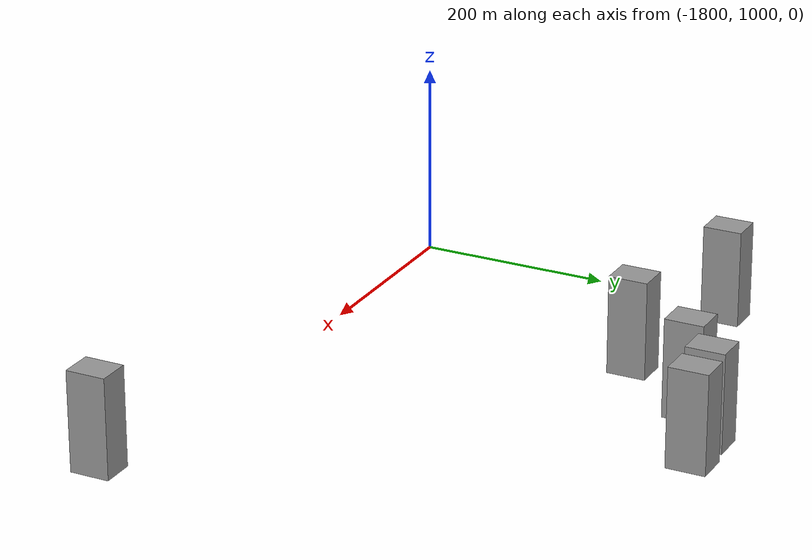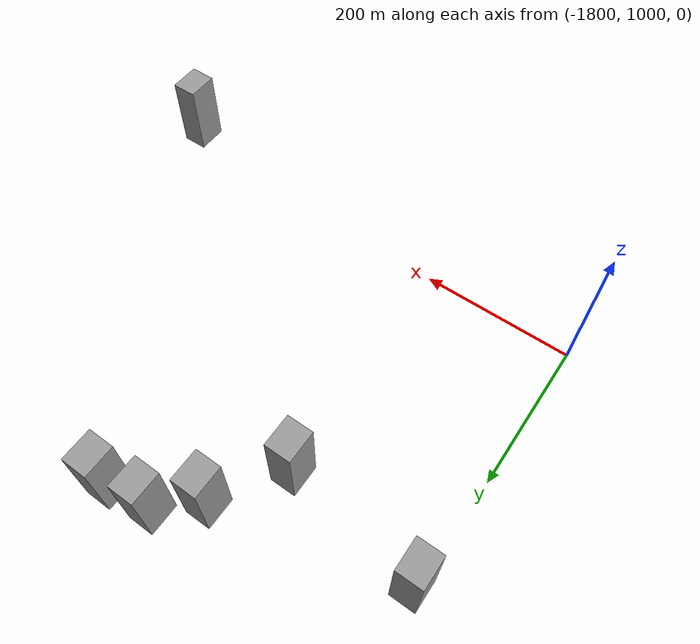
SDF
<sdf version="1.7">
 <world name="default">
  <model name="huge_building_68">
   <link name="link">
    <inertial>
     <mass>137299</mass>
     <inertia>
      <ixx>1.37911e+08</ixx>
      <ixy>0</ixy>
      <ixz>0</ixz>
      <iyy>1.32035e+08</iyy>
      <iyz>0</iyz>
      <izz>3.13216e+07</izz>
     </inertia>
    </inertial>
    <visual name="visual">
     <geometry><box><size>33.3468 40.3177 102.117</size></box></geometry>
     <material>
      <script><name>Gazebo/Grey</name><uri>file://media/materials/scripts/gazebo.material</uri></script>
      <shader type="pixel"/>
     </material>
    </visual>
    <collision name="collision">
     <geometry><box><size>33.3468 40.3177 102.117</size></box></geometry>
     <surface>
      <friction>
       <ode><mu>1</mu><mu2>1</mu2><fdir1>0 0 0</fdir1><slip1>0</slip1><slip2>0</slip2></ode>
       <torsional>
        <coefficient>1</coefficient>
        <patch_radius>0</patch_radius>
        <surface_radius>0</surface_radius>
        <use_patch_radius>1</use_patch_radius>
        <ode><slip>0</slip></ode>
       </torsional>
      </friction>
      <bounce><restitution_coefficient>0</restitution_coefficient><threshold>1e+06</threshold></bounce>
      <contact>
       <collide_without_contact>0</collide_without_contact>
       <collide_without_contact_bitmask>1</collide_without_contact_bitmask>
       <collide_bitmask>1</collide_bitmask>
       <ode>
        <soft_cfm>0</soft_cfm>
        <soft_erp>0.2</soft_erp>
        <kp>1e+13</kp>
        <kd>1</kd>
        <max_vel>0.01</max_vel>
        <min_depth>0</min_depth>
       </ode>
       <bullet>
        <split_impulse>1</split_impulse>
        <split_impulse_penetration_threshold>-0.01</split_impulse_penetration_threshold>
        <soft_cfm>0</soft_cfm>
        <soft_erp>0.2</soft_erp>
        <kp>1e+13</kp>
        <kd>1</kd>
       </bullet>
      </contact>
     </surface>
    </collision>
   </link>
   <static>0</static>
   <pose>-1790.33 1343.06 43 0 -0 0</pose>
  </model>
  <model name="huge_building_127">
   <link name="link">
    <inertial>
     <mass>137299</mass>
     <inertia>
      <ixx>1.37911e+08</ixx>
      <ixy>0</ixy>
      <ixz>0</ixz>
      <iyy>1.32035e+08</iyy>
      <iyz>0</iyz>
      <izz>3.13216e+07</izz>
     </inertia>
    </inertial>
    <visual name="visual">
     <geometry><box><size>33.3468 40.3177 102.117</size></box></geometry>
     <material>
      <script><name>Gazebo/Grey</name><uri>file://media/materials/scripts/gazebo.material</uri></script>
      <shader type="pixel"/>
     </material>
    </visual>
    <collision name="collision">
     <geometry><box><size>33.3468 40.3177 102.117</size></box></geometry>
     <surface>
      <friction>
       <ode><mu>1</mu><mu2>1</mu2><fdir1>0 0 0</fdir1><slip1>0</slip1><slip2>0</slip2></ode>
       <torsional>
        <coefficient>1</coefficient>
        <patch_radius>0</patch_radius>
        <surface_radius>0</surface_radius>
        <use_patch_radius>1</use_patch_radius>
        <ode><slip>0</slip></ode>
       </torsional>
      </friction>
      <bounce><restitution_coefficient>0</restitution_coefficient><threshold>1e+06</threshold></bounce>
      <contact>
       <collide_without_contact>0</collide_without_contact>
       <collide_without_contact_bitmask>1</collide_without_contact_bitmask>
       <collide_bitmask>1</collide_bitmask>
       <ode>
        <soft_cfm>0</soft_cfm>
        <soft_erp>0.2</soft_erp>
        <kp>1e+13</kp>
        <kd>1</kd>
        <max_vel>0.01</max_vel>
        <min_depth>0</min_depth>
       </ode>
       <bullet>
        <split_impulse>1</split_impulse>
        <split_impulse_penetration_threshold>-0.01</split_impulse_penetration_threshold>
        <soft_cfm>0</soft_cfm>
        <soft_erp>0.2</soft_erp>
        <kp>1e+13</kp>
        <kd>1</kd>
       </bullet>
      </contact>
     </surface>
    </collision>
   </link>
   <static>0</static>
   <pose>-1455 1446.99 48 0 -0 0</pose>
  </model>
  <model name="huge_building_128">
   <link name="link">
    <inertial>
     <mass>137299</mass>
     <inertia>
      <ixx>1.37911e+08</ixx>
      <ixy>0</ixy>
      <ixz>0</ixz>
      <iyy>1.32035e+08</iyy>
      <iyz>0</iyz>
      <izz>3.13216e+07</izz>
     </inertia>
    </inertial>
    <visual name="visual">
     <geometry><box><size>33.3468 40.3177 102.117</size></box></geometry>
     <material>
      <script><name>Gazebo/Grey</name><uri>file://media/materials/scripts/gazebo.material</uri></script>
      <shader type="pixel"/>
     </material>
    </visual>
    <collision name="collision">
     <geometry><box><size>33.3468 40.3177 102.117</size></box></geometry>
     <surface>
      <friction>
       <ode><mu>1</mu><mu2>1</mu2><fdir1>0 0 0</fdir1><slip1>0</slip1><slip2>0</slip2></ode>
       <torsional>
        <coefficient>1</coefficient>
        <patch_radius>0</patch_radius>
        <surface_radius>0</surface_radius>
        <use_patch_radius>1</use_patch_radius>
        <ode><slip>0</slip></ode>
       </torsional>
      </friction>
      <bounce><restitution_coefficient>0</restitution_coefficient><threshold>1e+06</threshold></bounce>
      <contact>
       <collide_without_contact>0</collide_without_contact>
       <collide_without_contact_bitmask>1</collide_without_contact_bitmask>
       <collide_bitmask>1</collide_bitmask>
       <ode>
        <soft_cfm>0</soft_cfm>
        <soft_erp>0.2</soft_erp>
        <kp>1e+13</kp>
        <kd>1</kd>
        <max_vel>0.01</max_vel>
        <min_depth>0</min_depth>
       </ode>
       <bullet>
        <split_impulse>1</split_impulse>
        <split_impulse_penetration_threshold>-0.01</split_impulse_penetration_threshold>
        <soft_cfm>0</soft_cfm>
        <soft_erp>0.2</soft_erp>
        <kp>1e+13</kp>
        <kd>1</kd>
       </bullet>
      </contact>
     </surface>
    </collision>
   </link>
   <static>0</static>
   <pose>-1511.25 1440.15 44 0 -0 0</pose>
  </model>
  <model name="huge_building_129">
   <link name="link">
    <inertial>
     <mass>137299</mass>
     <inertia>
      <ixx>1.37911e+08</ixx>
      <ixy>0</ixy>
      <ixz>0</ixz>
      <iyy>1.32035e+08</iyy>
      <iyz>0</iyz>
      <izz>3.13216e+07</izz>
     </inertia>
    </inertial>
    <visual name="visual">
     <geometry><box><size>33.3468 40.3177 102.117</size></box></geometry>
     <material>
      <script><name>Gazebo/Grey</name><uri>file://media/materials/scripts/gazebo.material</uri></script>
      <shader type="pixel"/>
     </material>
    </visual>
    <collision name="collision">
     <geometry><box><size>33.3468 40.3177 102.117</size></box></geometry>
     <surface>
      <friction>
       <ode><mu>1</mu><mu2>1</mu2><fdir1>0 0 0</fdir1><slip1>0</slip1><slip2>0</slip2></ode>
       <torsional>
        <coefficient>1</coefficient>
        <patch_radius>0</patch_radius>
        <surface_radius>0</surface_radius>
        <use_patch_radius>1</use_patch_radius>
        <ode><slip>0</slip></ode>
       </torsional>
      </friction>
      <bounce><restitution_coefficient>0</restitution_coefficient><threshold>1e+06</threshold></bounce>
      <contact>
       <collide_without_contact>0</collide_without_contact>
       <collide_without_contact_bitmask>1</collide_without_contact_bitmask>
       <collide_bitmask>1</collide_bitmask>
       <ode>
        <soft_cfm>0</soft_cfm>
        <soft_erp>0.2</soft_erp>
        <kp>1e+13</kp>
        <kd>1</kd>
        <max_vel>0.01</max_vel>
        <min_depth>0</min_depth>
       </ode>
       <bullet>
        <split_impulse>1</split_impulse>
        <split_impulse_penetration_threshold>-0.01</split_impulse_penetration_threshold>
        <soft_cfm>0</soft_cfm>
        <soft_erp>0.2</soft_erp>
        <kp>1e+13</kp>
        <kd>1</kd>
       </bullet>
      </contact>
     </surface>
    </collision>
   </link>
   <static>0</static>
   <pose>-1558.34 1399.3 45 0 -0 0</pose>
  </model>
  <model name="huge_building_130">
   <link name="link">
    <inertial>
     <mass>137299</mass>
     <inertia>
      <ixx>1.37911e+08</ixx>
      <ixy>0</ixy>
      <ixz>0</ixz>
      <iyy>1.32035e+08</iyy>
      <iyz>0</iyz>
      <izz>3.13216e+07</izz>
     </inertia>
    </inertial>
    <visual name="visual">
     <geometry><box><size>33.3468 40.3177 102.117</size></box></geometry>
     <material>
      <script><name>Gazebo/Grey</name><uri>file://media/materials/scripts/gazebo.material</uri></script>
      <shader type="pixel"/>
     </material>
    </visual>
    <collision name="collision">
     <geometry><box><size>33.3468 40.3177 102.117</size></box></geometry>
     <surface>
      <friction>
       <ode><mu>1</mu><mu2>1</mu2><fdir1>0 0 0</fdir1><slip1>0</slip1><slip2>0</slip2></ode>
       <torsional>
        <coefficient>1</coefficient>
        <patch_radius>0</patch_radius>
        <surface_radius>0</surface_radius>
        <use_patch_radius>1</use_patch_radius>
        <ode><slip>0</slip></ode>
       </torsional>
      </friction>
      <bounce><restitution_coefficient>0</restitution_coefficient><threshold>1e+06</threshold></bounce>
      <contact>
       <collide_without_contact>0</collide_without_contact>
       <collide_without_contact_bitmask>1</collide_without_contact_bitmask>
       <collide_bitmask>1</collide_bitmask>
       <ode>
        <soft_cfm>0</soft_cfm>
        <soft_erp>0.2</soft_erp>
        <kp>1e+13</kp>
        <kd>1</kd>
        <max_vel>0.01</max_vel>
        <min_depth>0</min_depth>
       </ode>
       <bullet>
        <split_impulse>1</split_impulse>
        <split_impulse_penetration_threshold>-0.01</split_impulse_penetration_threshold>
        <soft_cfm>0</soft_cfm>
        <soft_erp>0.2</soft_erp>
        <kp>1e+13</kp>
        <kd>1</kd>
       </bullet>
      </contact>
     </surface>
    </collision>
   </link>
   <static>0</static>
   <pose>-1614.3 1317.04 51 0 -0 0</pose>
  </model>
  <model name="huge_building_159">
   <link name="link">
    <inertial>
     <mass>137299</mass>
     <inertia>
      <ixx>1.37911e+08</ixx>
      <ixy>0</ixy>
      <ixz>0</ixz>
      <iyy>1.32035e+08</iyy>
      <iyz>0</iyz>
      <izz>3.13216e+07</izz>
     </inertia>
    </inertial>
    <visual name="visual">
     <geometry><box><size>33.3468 40.3177 102.117</size></box></geometry>
     <material>
      <script><name>Gazebo/Grey</name><uri>file://media/materials/scripts/gazebo.material</uri></script>
      <shader type="pixel"/>
     </material>
    </visual>
    <collision name="collision">
     <geometry><box><size>33.3468 40.3177 102.117</size></box></geometry>
     <surface>
      <friction>
       <ode><mu>1</mu><mu2>1</mu2><fdir1>0 0 0</fdir1><slip1>0</slip1><slip2>0</slip2></ode>
       <torsional>
        <coefficient>1</coefficient>
        <patch_radius>0</patch_radius>
        <surface_radius>0</surface_radius>
        <use_patch_radius>1</use_patch_radius>
        <ode><slip>0</slip></ode>
       </torsional>
      </friction>
      <bounce><restitution_coefficient>0</restitution_coefficient><threshold>1e+06</threshold></bounce>
      <contact>
       <collide_without_contact>0</collide_without_contact>
       <collide_without_contact_bitmask>1</collide_without_contact_bitmask>
       <collide_bitmask>1</collide_bitmask>
       <ode>
        <soft_cfm>0</soft_cfm>
        <soft_erp>0.2</soft_erp>
        <kp>1e+13</kp>
        <kd>1</kd>
        <max_vel>0.01</max_vel>
        <min_depth>0</min_depth>
       </ode>
       <bullet>
        <split_impulse>1</split_impulse>
        <split_impulse_penetration_threshold>-0.01</split_impulse_penetration_threshold>
        <soft_cfm>0</soft_cfm>
        <soft_erp>0.2</soft_erp>
        <kp>1e+13</kp>
        <kd>1</kd>
       </bullet>
      </contact>
     </surface>
    </collision>
   </link>
   <static>0</static>
   <pose>-1188.08 973.496 55 0 -0 0</pose>
  </model>
 </world>
</sdf>
